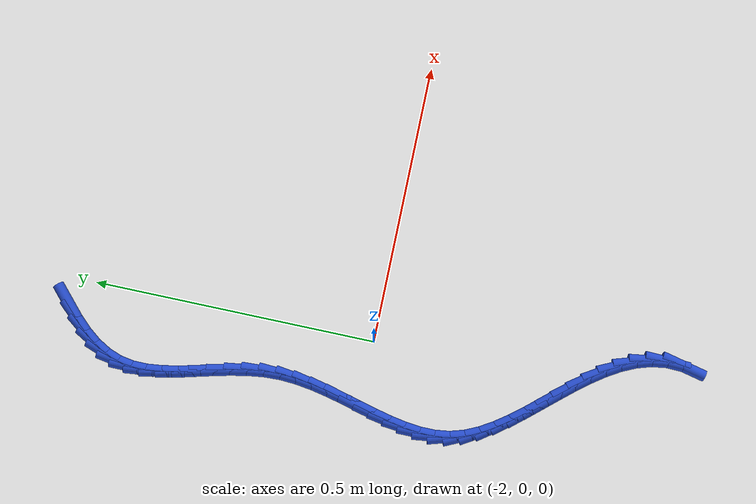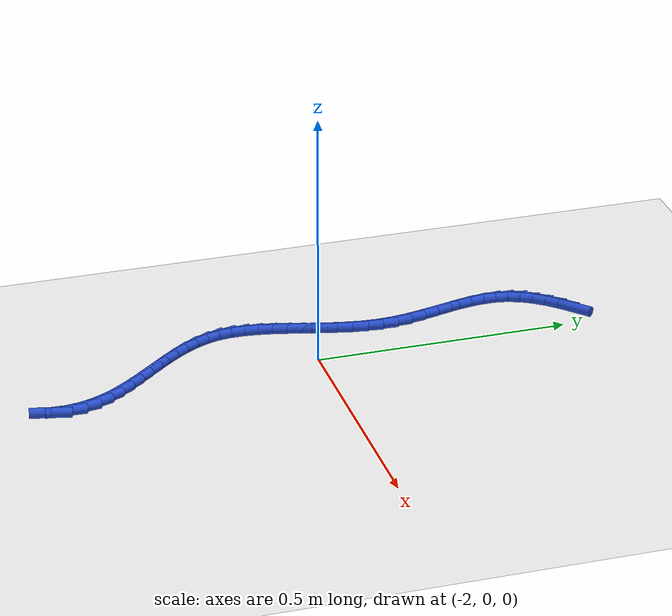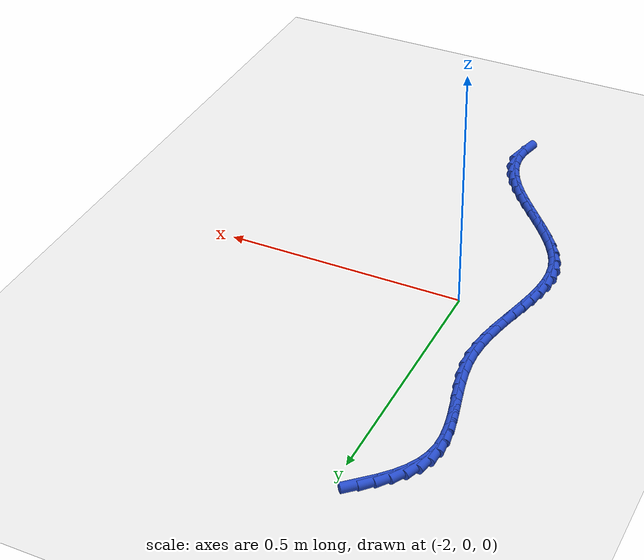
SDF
<sdf version="1.6">
 <world name="default">
  <model name="ground_plane">
   <static>1</static>
   <link name="link">
    <collision name="collision">
     <geometry><plane><normal>0 0 1</normal><size>100 100</size></plane></geometry>
     <surface><friction><ode><mu>100</mu><mu2>50</mu2></ode></friction></surface>
    </collision>
    <visual name="visual">
     <cast_shadows>0</cast_shadows>
     <geometry><plane><normal>0 0 1</normal><size>100 100</size></plane></geometry>
     <material>
      <script><uri>file://media/materials/scripts/gazebo.material</uri><name>Gazebo/WhiteGlow</name></script>
     </material>
    </visual>
   </link>
  </model>
  <model name="line">
   <link name="link_104">
    <pose>-2.0472244146861 0.5362490954923707 0.01 0 1.57 0.7411241482865463</pose>
    <collision name="collision">
     <geometry><cylinder><radius>0.01</radius><length>0.08</length></cylinder></geometry>
    </collision>
    <visual name="visual">
     <material>
      <script><name>Gazebo/Blue</name><uri>file://media/materials/scripts/gazebo.material</uri></script>
     </material>
     <geometry><cylinder><radius>0.01</radius><length>0.08</length></cylinder></geometry>
    </visual>
   </link>
   <link name="link_105">
    <pose>-2.068897253023456 0.5164151316140295 0.01 0 1.57 0.8225417465173451</pose>
    <collision name="collision">
     <geometry><cylinder><radius>0.01</radius><length>0.08</length></cylinder></geometry>
    </collision>
    <visual name="visual">
     <material>
      <script><name>Gazebo/Blue</name><uri>file://media/materials/scripts/gazebo.material</uri></script>
     </material>
     <geometry><cylinder><radius>0.01</radius><length>0.08</length></cylinder></geometry>
    </visual>
   </link>
   <link name="link_106">
    <pose>-2.0880844203840874 0.4957469111715658 0.01 0 1.57 0.9276593658763003</pose>
    <collision name="collision">
     <geometry><cylinder><radius>0.01</radius><length>0.08</length></cylinder></geometry>
    </collision>
    <visual name="visual">
     <material>
      <script><name>Gazebo/Blue</name><uri>file://media/materials/scripts/gazebo.material</uri></script>
     </material>
     <geometry><cylinder><radius>0.01</radius><length>0.08</length></cylinder></geometry>
    </visual>
   </link>
   <link name="link_107">
    <pose>-2.1042617859039217 0.47416071876967664 0.01 0 1.57 1.0605028211543166</pose>
    <collision name="collision">
     <geometry><cylinder><radius>0.01</radius><length>0.08</length></cylinder></geometry>
    </collision>
    <visual name="visual">
     <material>
      <script><name>Gazebo/Blue</name><uri>file://media/materials/scripts/gazebo.material</uri></script>
     </material>
     <geometry><cylinder><radius>0.01</radius><length>0.08</length></cylinder></geometry>
    </visual>
   </link>
   <link name="link_108">
    <pose>-2.116905218718893 0.4515728390130601 0.01 0 1.57 1.2228873090951355</pose>
    <collision name="collision">
     <geometry><cylinder><radius>0.01</radius><length>0.08</length></cylinder></geometry>
    </collision>
    <visual name="visual">
     <material>
      <script><name>Gazebo/Blue</name><uri>file://media/materials/scripts/gazebo.material</uri></script>
     </material>
     <geometry><cylinder><radius>0.01</radius><length>0.08</length></cylinder></geometry>
    </visual>
   </link>
   <link name="link_109">
    <pose>-2.125490587964928 0.42789955650641337 0.01 0 1.57 1.406042306726264</pose>
    <collision name="collision">
     <geometry><cylinder><radius>0.01</radius><length>0.08</length></cylinder></geometry>
    </collision>
    <visual name="visual">
     <material>
      <script><name>Gazebo/Blue</name><uri>file://media/materials/scripts/gazebo.material</uri></script>
     </material>
     <geometry><cylinder><radius>0.01</radius><length>0.08</length></cylinder></geometry>
    </visual>
   </link>
   <link name="link_110">
    <pose>-2.1296176650289182 0.4030766861692913 0.01 0 1.57 1.56537320630042</pose>
    <collision name="collision">
     <geometry><cylinder><radius>0.01</radius><length>0.08</length></cylinder></geometry>
    </collision>
    <visual name="visual">
     <material>
      <script><name>Gazebo/Blue</name><uri>file://media/materials/scripts/gazebo.material</uri></script>
     </material>
     <geometry><cylinder><radius>0.01</radius><length>0.08</length></cylinder></geometry>
    </visual>
   </link>
   <link name="link_111">
    <pose>-2.1297581209342846 0.37717747766753973 0.01 0 1.57 -1.4594904885103421</pose>
    <collision name="collision">
     <geometry><cylinder><radius>0.01</radius><length>0.08</length></cylinder></geometry>
    </collision>
    <visual name="visual">
     <material>
      <script><name>Gazebo/Blue</name><uri>file://media/materials/scripts/gazebo.material</uri></script>
     </material>
     <geometry><cylinder><radius>0.01</radius><length>0.08</length></cylinder></geometry>
    </visual>
   </link>
   <link name="link_112">
    <pose>-2.126757904713336 0.3503341769104232 0.01 0 1.57 -1.3816713540783614</pose>
    <collision name="collision">
     <geometry><cylinder><radius>0.01</radius><length>0.08</length></cylinder></geometry>
    </collision>
    <visual name="visual">
     <material>
      <script><name>Gazebo/Blue</name><uri>file://media/materials/scripts/gazebo.material</uri></script>
     </material>
     <geometry><cylinder><radius>0.01</radius><length>0.08</length></cylinder></geometry>
    </visual>
   </link>
   <link name="link_113">
    <pose>-2.121464404576586 0.322679256660256 0.01 0 1.57 -1.3372806302615596</pose>
    <collision name="collision">
     <geometry><cylinder><radius>0.01</radius><length>0.08</length></cylinder></geometry>
    </collision>
    <visual name="visual">
     <material>
      <script><name>Gazebo/Blue</name><uri>file://media/materials/scripts/gazebo.material</uri></script>
     </material>
     <geometry><cylinder><radius>0.01</radius><length>0.08</length></cylinder></geometry>
    </visual>
   </link>
   <link name="link_114">
    <pose>-2.1147250087345526 0.2943451896793528 0.01 0 1.57 -1.3219851163044356</pose>
    <collision name="collision">
     <geometry><cylinder><radius>0.01</radius><length>0.08</length></cylinder></geometry>
    </collision>
    <visual name="visual">
     <material>
      <script><name>Gazebo/Blue</name><uri>file://media/materials/scripts/gazebo.material</uri></script>
     </material>
     <geometry><cylinder><radius>0.01</radius><length>0.08</length></cylinder></geometry>
    </visual>
   </link>
   <link name="link_115">
    <pose>-2.1073871053977506 0.26546444873002834 0.01 0 1.57 -1.3333725276028958</pose>
    <collision name="collision">
     <geometry><cylinder><radius>0.01</radius><length>0.08</length></cylinder></geometry>
    </collision>
    <visual name="visual">
     <material>
      <script><name>Gazebo/Blue</name><uri>file://media/materials/scripts/gazebo.material</uri></script>
     </material>
     <geometry><cylinder><radius>0.01</radius><length>0.08</length></cylinder></geometry>
    </visual>
   </link>
   <link name="link_116">
    <pose>-2.100298082776696 0.23616950657459695 0.01 0 1.57 -1.3708851258459442</pose>
    <collision name="collision">
     <geometry><cylinder><radius>0.01</radius><length>0.08</length></cylinder></geometry>
    </collision>
    <visual name="visual">
     <material>
      <script><name>Gazebo/Blue</name><uri>file://media/materials/scripts/gazebo.material</uri></script>
     </material>
     <geometry><cylinder><radius>0.01</radius><length>0.08</length></cylinder></geometry>
    </visual>
   </link>
   <link name="link_117">
    <pose>-2.0943053290819047 0.20659283597537328 0.01 0 1.57 -1.4354152153840523</pose>
    <collision name="collision">
     <geometry><cylinder><radius>0.01</radius><length>0.08</length></cylinder></geometry>
    </collision>
    <visual name="visual">
     <material>
      <script><name>Gazebo/Blue</name><uri>file://media/materials/scripts/gazebo.material</uri></script>
     </material>
     <geometry><cylinder><radius>0.01</radius><length>0.08</length></cylinder></geometry>
    </visual>
   </link>
   <link name="link_118">
    <pose>-2.0902562325238923 0.1768669096946719 0.01 0 1.57 -1.5280335724826957</pose>
    <collision name="collision">
     <geometry><cylinder><radius>0.01</radius><length>0.08</length></cylinder></geometry>
    </collision>
    <visual name="visual">
     <material>
      <script><name>Gazebo/Blue</name><uri>file://media/materials/scripts/gazebo.material</uri></script>
     </material>
     <geometry><cylinder><radius>0.01</radius><length>0.08</length></cylinder></geometry>
    </visual>
   </link>
   <link name="link_119">
    <pose>-2.0889835434351176 0.14712342741275464 0.01 0 1.57 1.512635022150395</pose>
    <collision name="collision">
     <geometry><cylinder><radius>0.01</radius><length>0.08</length></cylinder></geometry>
    </collision>
    <visual name="visual">
     <material>
      <script><name>Gazebo/Blue</name><uri>file://media/materials/scripts/gazebo.material</uri></script>
     </material>
     <geometry><cylinder><radius>0.01</radius><length>0.08</length></cylinder></geometry>
    </visual>
   </link>
   <link name="link_120">
    <pose>-2.0907106441138916 0.1174619057647169 0.01 0 1.57 1.431657371279094</pose>
    <collision name="collision">
     <geometry><cylinder><radius>0.01</radius><length>0.08</length></cylinder></geometry>
    </collision>
    <visual name="visual">
     <material>
      <script><name>Gazebo/Blue</name><uri>file://media/materials/scripts/gazebo.material</uri></script>
     </material>
     <geometry><cylinder><radius>0.01</radius><length>0.08</length></cylinder></geometry>
    </visual>
   </link>
   <link name="link_121">
    <pose>-2.094845176661973 0.08793877904112703 0.01 0 1.57 1.3725378128062176</pose>
    <collision name="collision">
     <geometry><cylinder><radius>0.01</radius><length>0.08</length></cylinder></geometry>
    </collision>
    <visual name="visual">
     <material>
      <script><name>Gazebo/Blue</name><uri>file://media/materials/scripts/gazebo.material</uri></script>
     </material>
     <geometry><cylinder><radius>0.01</radius><length>0.08</length></cylinder></geometry>
    </visual>
   </link>
   <link name="link_122">
    <pose>-2.100737766999857 0.05860747029101575 0.01 0 1.57 1.3345812056536517</pose>
    <collision name="collision">
     <geometry><cylinder><radius>0.01</radius><length>0.08</length></cylinder></geometry>
    </collision>
    <visual name="visual">
     <material>
      <script><name>Gazebo/Blue</name><uri>file://media/materials/scripts/gazebo.material</uri></script>
     </material>
     <geometry><cylinder><radius>0.01</radius><length>0.08</length></cylinder></geometry>
    </visual>
   </link>
   <link name="link_123">
    <pose>-2.1077390410480383 0.02952140256341347 0.01 0 1.57 1.3172139337648474</pose>
    <collision name="collision">
     <geometry><cylinder><radius>0.01</radius><length>0.08</length></cylinder></geometry>
    </collision>
    <visual name="visual">
     <material>
      <script><name>Gazebo/Blue</name><uri>file://media/materials/scripts/gazebo.material</uri></script>
     </material>
     <geometry><cylinder><radius>0.01</radius><length>0.08</length></cylinder></geometry>
    </visual>
   </link>
   <link name="link_124">
    <pose>-2.1151996247270133 0.0007339989073504556 0.01 0 1.57 1.3204731079664684</pose>
    <collision name="collision">
     <geometry><cylinder><radius>0.01</radius><length>0.08</length></cylinder></geometry>
    </collision>
    <visual name="visual">
     <material>
      <script><name>Gazebo/Blue</name><uri>file://media/materials/scripts/gazebo.material</uri></script>
     </material>
     <geometry><cylinder><radius>0.01</radius><length>0.08</length></cylinder></geometry>
    </visual>
   </link>
   <link name="link_125">
    <pose>-2.1224701439572766 -0.027701317628142902 0.01 0 1.57 1.3452625141746943</pose>
    <collision name="collision">
     <geometry><cylinder><radius>0.01</radius><length>0.08</length></cylinder></geometry>
    </collision>
    <visual name="visual">
     <material>
      <script><name>Gazebo/Blue</name><uri>file://media/materials/scripts/gazebo.material</uri></script>
     </material>
     <geometry><cylinder><radius>0.01</radius><length>0.08</length></cylinder></geometry>
    </visual>
   </link>
   <link name="link_126">
    <pose>-2.128901224659322 -0.055731123994036263 0.01 0 1.57 1.3934233014967683</pose>
    <collision name="collision">
     <geometry><cylinder><radius>0.01</radius><length>0.08</length></cylinder></geometry>
    </collision>
    <visual name="visual">
     <material>
      <script><name>Gazebo/Blue</name><uri>file://media/materials/scripts/gazebo.material</uri></script>
     </material>
     <geometry><cylinder><radius>0.01</radius><length>0.08</length></cylinder></geometry>
    </visual>
   </link>
   <link name="link_127">
    <pose>-2.1338434927536456 -0.08330199714129935 0.01 0 1.57 1.4675346545944932</pose>
    <collision name="collision">
     <geometry><cylinder><radius>0.01</radius><length>0.08</length></cylinder></geometry>
    </collision>
    <visual name="visual">
     <material>
      <script><name>Gazebo/Blue</name><uri>file://media/materials/scripts/gazebo.material</uri></script>
     </material>
     <geometry><cylinder><radius>0.01</radius><length>0.08</length></cylinder></geometry>
    </visual>
   </link>
   <link name="link_128">
    <pose>-2.136647574160742 -0.11036051402090173 0.01 0 1.57 1.5701727355867967</pose>
    <collision name="collision">
     <geometry><cylinder><radius>0.01</radius><length>0.08</length></cylinder></geometry>
    </collision>
    <visual name="visual">
     <material>
      <script><name>Gazebo/Blue</name><uri>file://media/materials/scripts/gazebo.material</uri></script>
     </material>
     <geometry><cylinder><radius>0.01</radius><length>0.08</length></cylinder></geometry>
    </visual>
   </link>
   <link name="link_129">
    <pose>-2.136664094801106 -0.13685325158381317 0.01 0 1.57 -1.4393610471404081</pose>
    <collision name="collision">
     <geometry><cylinder><radius>0.01</radius><length>0.08</length></cylinder></geometry>
    </collision>
    <visual name="visual">
     <material>
      <script><name>Gazebo/Blue</name><uri>file://media/materials/scripts/gazebo.material</uri></script>
     </material>
     <geometry><cylinder><radius>0.01</radius><length>0.08</length></cylinder></geometry>
    </visual>
   </link>
   <link name="link_130">
    <pose>-2.1332436805952337 -0.1627267867810033 0.01 0 1.57 -1.2835548267918295</pose>
    <collision name="collision">
     <geometry><cylinder><radius>0.01</radius><length>0.08</length></cylinder></geometry>
    </collision>
    <visual name="visual">
     <material>
      <script><name>Gazebo/Blue</name><uri>file://media/materials/scripts/gazebo.material</uri></script>
     </material>
     <geometry><cylinder><radius>0.01</radius><length>0.08</length></cylinder></geometry>
    </visual>
   </link>
   <link name="link_131">
    <pose>-2.125796623647152 -0.18793591678459262 0.01 0 1.57 -1.139922534661138</pose>
    <collision name="collision">
     <geometry><cylinder><radius>0.01</radius><length>0.08</length></cylinder></geometry>
    </collision>
    <visual name="visual">
     <material>
      <script><name>Gazebo/Blue</name><uri>file://media/materials/scripts/gazebo.material</uri></script>
     </material>
     <geometry><cylinder><radius>0.01</radius><length>0.08</length></cylinder></geometry>
    </visual>
   </link>
   <link name="link_132">
    <pose>-2.11448697181014 -0.2125392838358091 0.01 0 1.57 -1.029910740706819</pose>
    <collision name="collision">
     <geometry><cylinder><radius>0.01</radius><length>0.08</length></cylinder></geometry>
    </collision>
    <visual name="visual">
     <material>
      <script><name>Gazebo/Blue</name><uri>file://media/materials/scripts/gazebo.material</uri></script>
     </material>
     <geometry><cylinder><radius>0.01</radius><length>0.08</length></cylinder></geometry>
    </visual>
   </link>
   <link name="link_133">
    <pose>-2.09999523415574 -0.2366666831335282 0.01 0 1.57 -0.950667619899245</pose>
    <collision name="collision">
     <geometry><cylinder><radius>0.01</radius><length>0.08</length></cylinder></geometry>
    </collision>
    <visual name="visual">
     <material>
      <script><name>Gazebo/Blue</name><uri>file://media/materials/scripts/gazebo.material</uri></script>
     </material>
     <geometry><cylinder><radius>0.01</radius><length>0.08</length></cylinder></geometry>
    </visual>
   </link>
   <link name="link_134">
    <pose>-2.08301199021825 -0.26044929728614263 0.01 0 1.57 -0.8978959350275089</pose>
    <collision name="collision">
     <geometry><cylinder><radius>0.01</radius><length>0.08</length></cylinder></geometry>
    </collision>
    <visual name="visual">
     <material>
      <script><name>Gazebo/Blue</name><uri>file://media/materials/scripts/gazebo.material</uri></script>
     </material>
     <geometry><cylinder><radius>0.01</radius><length>0.08</length></cylinder></geometry>
    </visual>
   </link>
   <link name="link_135">
    <pose>-2.0642278195319665 -0.2840183089020453 0.01 0 1.57 -0.8680124163455364</pose>
    <collision name="collision">
     <geometry><cylinder><radius>0.01</radius><length>0.08</length></cylinder></geometry>
    </collision>
    <visual name="visual">
     <material>
      <script><name>Gazebo/Blue</name><uri>file://media/materials/scripts/gazebo.material</uri></script>
     </material>
     <geometry><cylinder><radius>0.01</radius><length>0.08</length></cylinder></geometry>
    </visual>
   </link>
   <link name="link_136">
    <pose>-2.044333301631184 -0.30750490058962887 0.01 0 1.57 -0.8587235977666812</pose>
    <collision name="collision">
     <geometry><cylinder><radius>0.01</radius><length>0.08</length></cylinder></geometry>
    </collision>
    <visual name="visual">
     <material>
      <script><name>Gazebo/Blue</name><uri>file://media/materials/scripts/gazebo.material</uri></script>
     </material>
     <geometry><cylinder><radius>0.01</radius><length>0.08</length></cylinder></geometry>
    </visual>
   </link>
   <link name="link_137">
    <pose>-2.024019016050201 -0.33104025495728645 0.01 0 1.57 -0.8691126760328702</pose>
    <collision name="collision">
     <geometry><cylinder><radius>0.01</radius><length>0.08</length></cylinder></geometry>
    </collision>
    <visual name="visual">
     <material>
      <script><name>Gazebo/Blue</name><uri>file://media/materials/scripts/gazebo.material</uri></script>
     </material>
     <geometry><cylinder><radius>0.01</radius><length>0.08</length></cylinder></geometry>
    </visual>
   </link>
   <link name="link_138">
    <pose>-2.0039755423233134 -0.3547555546134105 0.01 0 1.57 -0.8995944966721053</pose>
    <collision name="collision">
     <geometry><cylinder><radius>0.01</radius><length>0.08</length></cylinder></geometry>
    </collision>
    <visual name="visual">
     <material>
      <script><name>Gazebo/Blue</name><uri>file://media/materials/scripts/gazebo.material</uri></script>
     </material>
     <geometry><cylinder><radius>0.01</radius><length>0.08</length></cylinder></geometry>
    </visual>
   </link>
   <link name="link_139">
    <pose>-1.9848934599848163 -0.3787819821663941 0.01 0 1.57 -0.9518350348149954</pose>
    <collision name="collision">
     <geometry><cylinder><radius>0.01</radius><length>0.08</length></cylinder></geometry>
    </collision>
    <visual name="visual">
     <material>
      <script><name>Gazebo/Blue</name><uri>file://media/materials/scripts/gazebo.material</uri></script>
     </material>
     <geometry><cylinder><radius>0.01</radius><length>0.08</length></cylinder></geometry>
    </visual>
   </link>
   <link name="link_140">
    <pose>-1.9674633485690063 -0.40325072022462977 0.01 0 1.57 -1.0285518489476755</pose>
    <collision name="collision">
     <geometry><cylinder><radius>0.01</radius><length>0.08</length></cylinder></geometry>
    </collision>
    <visual name="visual">
     <material>
      <script><name>Gazebo/Blue</name><uri>file://media/materials/scripts/gazebo.material</uri></script>
     </material>
     <geometry><cylinder><radius>0.01</radius><length>0.08</length></cylinder></geometry>
    </visual>
   </link>
   <link name="link_141">
    <pose>-1.9523757876101806 -0.4282929513965105 0.01 0 1.57 -1.1329194109877505</pose>
    <collision name="collision">
     <geometry><cylinder><radius>0.01</radius><length>0.08</length></cylinder></geometry>
    </collision>
    <visual name="visual">
     <material>
      <script><name>Gazebo/Blue</name><uri>file://media/materials/scripts/gazebo.material</uri></script>
     </material>
     <geometry><cylinder><radius>0.01</radius><length>0.08</length></cylinder></geometry>
    </visual>
   </link>
   <link name="link_142">
    <pose>-1.9403213566426345 -0.45403985829042914 0.01 0 1.57 -1.2671026044951872</pose>
    <collision name="collision">
     <geometry><cylinder><radius>0.01</radius><length>0.08</length></cylinder></geometry>
    </collision>
    <visual name="visual">
     <material>
      <script><name>Gazebo/Blue</name><uri>file://media/materials/scripts/gazebo.material</uri></script>
     </material>
     <geometry><cylinder><radius>0.01</radius><length>0.08</length></cylinder></geometry>
    </visual>
   </link>
   <link name="link_143">
    <pose>-1.9319906352006655 -0.48062262351477836 0.01 0 1.57 -1.429584248765226</pose>
    <collision name="collision">
     <geometry><cylinder><radius>0.01</radius><length>0.08</length></cylinder></geometry>
    </collision>
    <visual name="visual">
     <material>
      <script><name>Gazebo/Blue</name><uri>file://media/materials/scripts/gazebo.material</uri></script>
     </material>
     <geometry><cylinder><radius>0.01</radius><length>0.08</length></cylinder></geometry>
    </visual>
   </link>
   <link name="link_144">
    <pose>-1.9280742028185682 -0.508172429677951 0.01 0 1.57 1.5293360522085238</pose>
    <collision name="collision">
     <geometry><cylinder><radius>0.01</radius><length>0.08</length></cylinder></geometry>
    </collision>
    <visual name="visual">
     <material>
      <script><name>Gazebo/Blue</name><uri>file://media/materials/scripts/gazebo.material</uri></script>
     </material>
     <geometry><cylinder><radius>0.01</radius><length>0.08</length></cylinder></geometry>
    </visual>
   </link>
   <link name="link_145">
    <pose>-1.9292626390306407 -0.5368204593883391 0.01 0 1.57 1.3448137544440266</pose>
    <collision name="collision">
     <geometry><cylinder><radius>0.01</radius><length>0.08</length></cylinder></geometry>
    </collision>
    <visual name="visual">
     <material>
      <script><name>Gazebo/Blue</name><uri>file://media/materials/scripts/gazebo.material</uri></script>
     </material>
     <geometry><cylinder><radius>0.01</radius><length>0.08</length></cylinder></geometry>
    </visual>
   </link>
  </model>
 </world>
</sdf>
